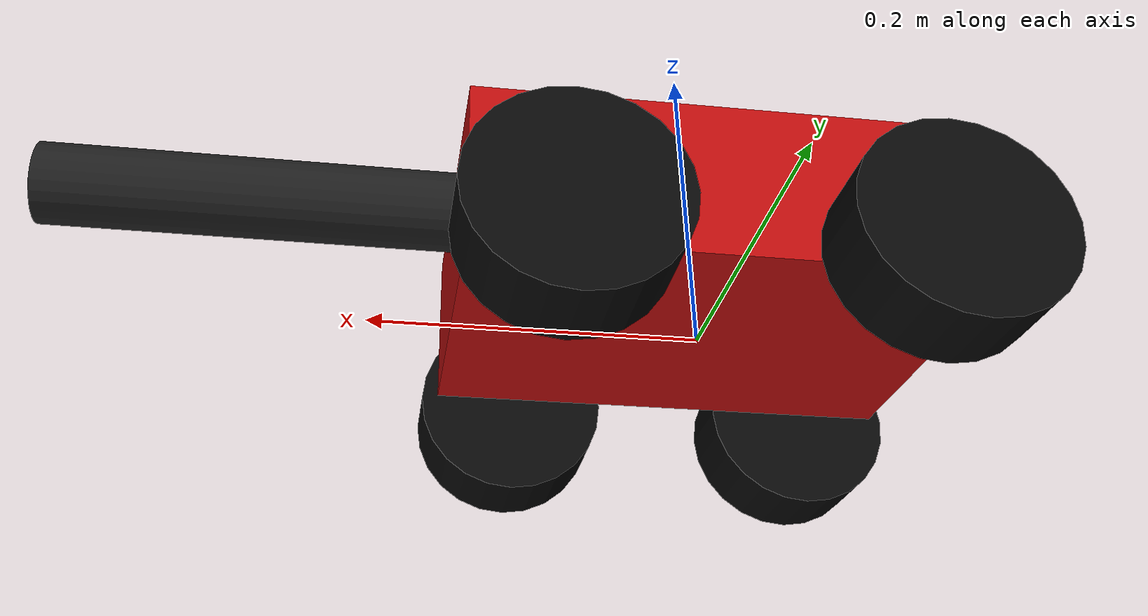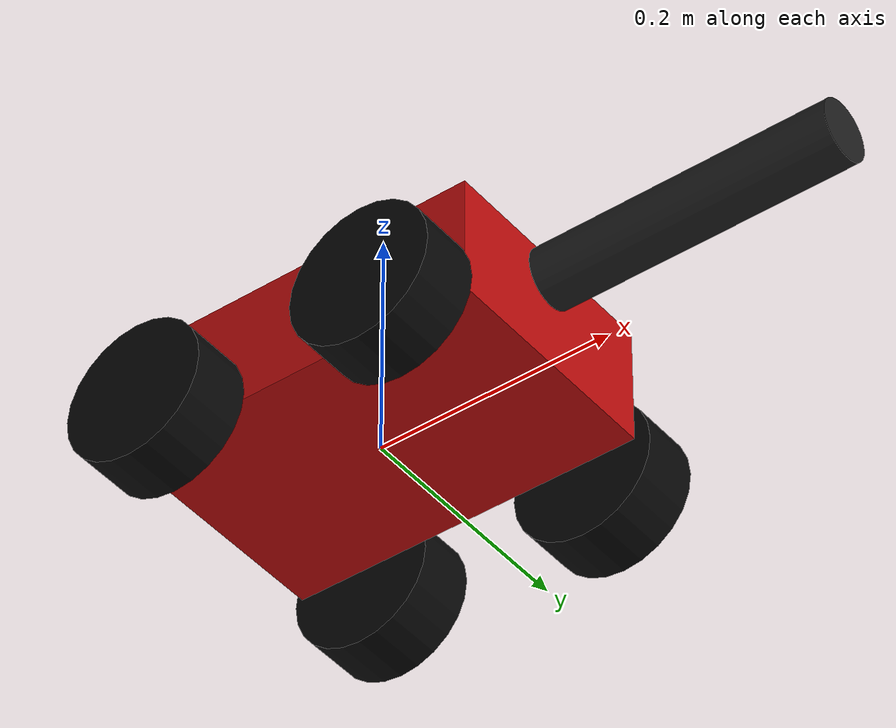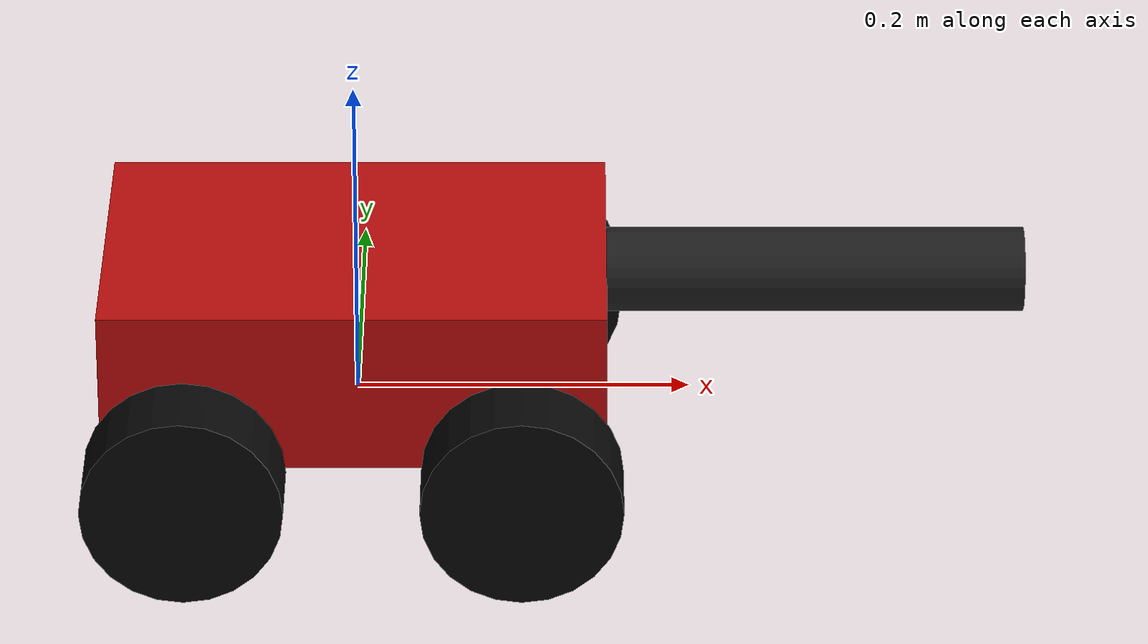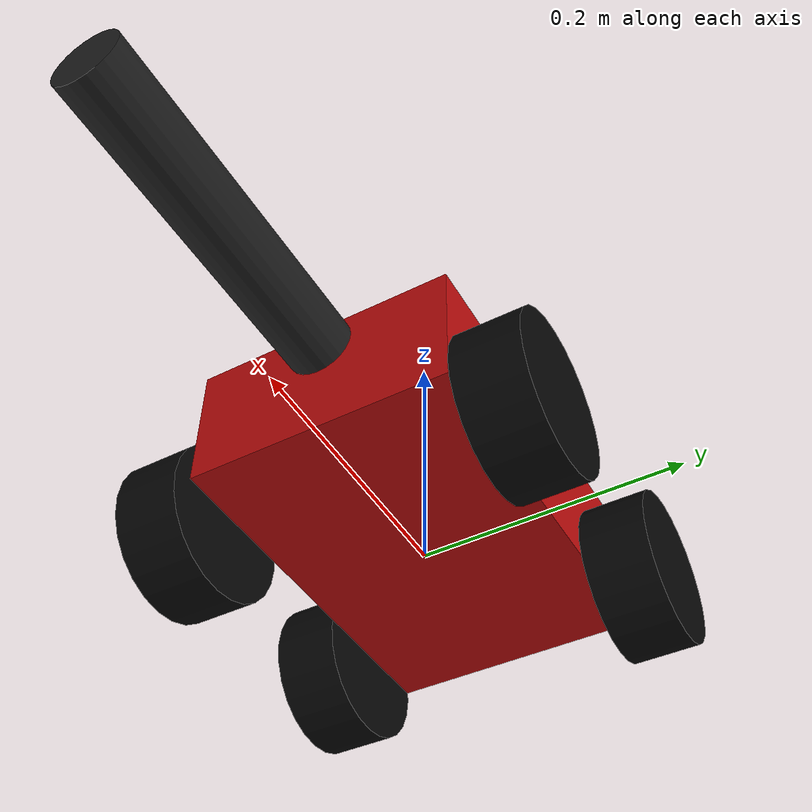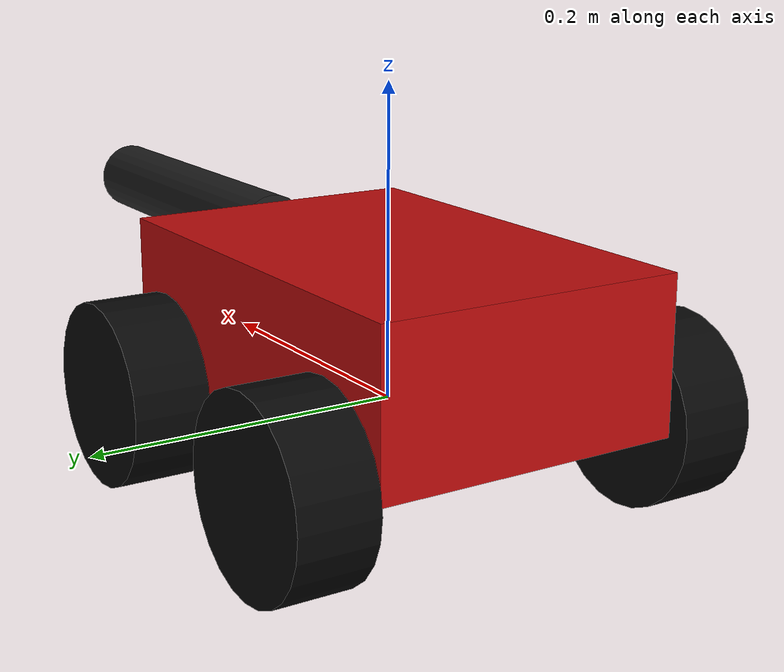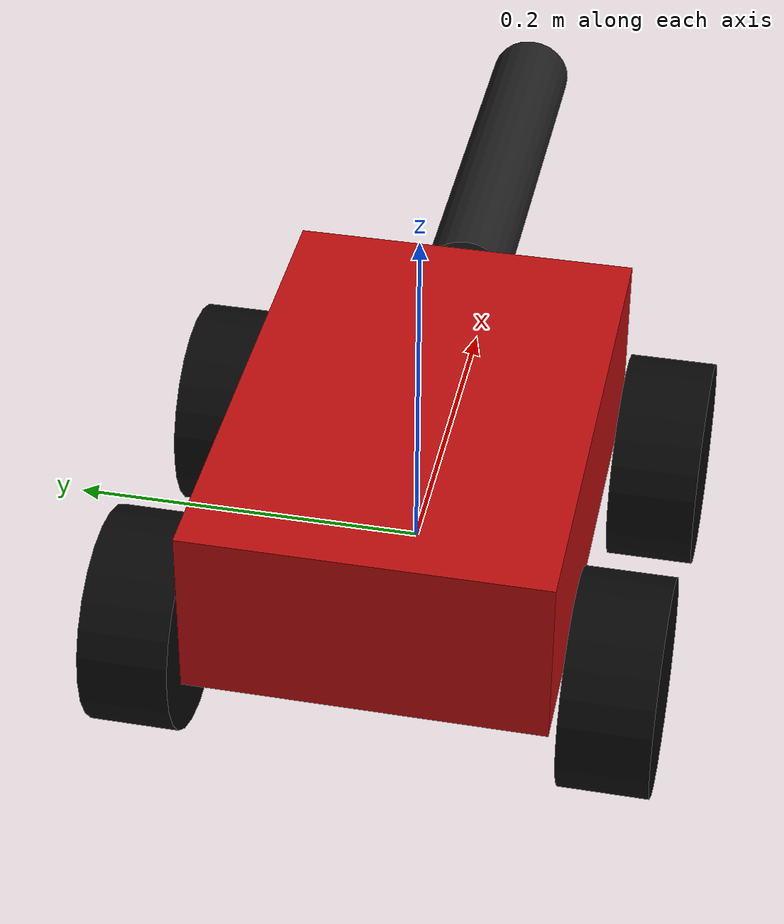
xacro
<?xml version="1.0"?>
<robot name="combat_shooter" xmlns:xacro="http://www.ros.org/wiki/xacro">
  <xacro:arg name="robot_id" default="red_robot"/>
  <xacro:arg name="opponent_id" default="blue_target"/>
  <xacro:arg name="body_rgba" default="0.75 0.05 0.05 1"/>
  <xacro:arg name="projectile_speed" default="12.0"/>
  <xacro:arg name="projectile_radius" default="0.02"/>

  <xacro:property name="PI" value="3.141592653589793"/>
  <xacro:property name="wheel_length" value="0.05"/>
  <xacro:property name="wheel_radius" value="0.06"/>

  <xacro:macro name="default_inertial" params="mass">
    <inertial>
      <mass value="${mass}"/>
      <inertia
        ixx="0.01" ixy="0.0" ixz="0.0"
        iyy="0.01" iyz="0.0" izz="0.01"/>
    </inertial>
  </xacro:macro>

  <xacro:macro name="wheel" params="name x y">
    <link name="${name}">
      <visual>
        <geometry>
          <cylinder length="${wheel_length}" radius="${wheel_radius}"/>
        </geometry>
        <material name="wheel_black">
          <color rgba="0.03 0.03 0.03 1"/>
        </material>
      </visual>
      <collision name="${name}_collision">
        <geometry>
          <cylinder length="${wheel_length}" radius="${wheel_radius}"/>
        </geometry>
      </collision>
      <xacro:default_inertial mass="0.5"/>
    </link>
    <joint name="base_to_${name}" type="continuous">
      <parent link="base_link"/>
      <child link="${name}"/>
      <origin xyz="${x} ${y} 0" rpy="${-PI / 2} 0 0"/>
      <axis xyz="0 0 1"/>
      <limit effort="100" velocity="100"/>
      <dynamics damping="0.05" friction="0.02"/>
    </joint>
    <gazebo reference="${name}">
      <material>Gazebo/Black</material>
      <mu1>0.5</mu1>
      <mu2>0.5</mu2>
    </gazebo>
  </xacro:macro>

  <!-- Match the original lightweight RMUL wheeled chassis. -->
  <link name="dummy"/>
  <link name="base_link">
    <visual>
      <origin xyz="0 0 0.05" rpy="0 0 ${PI / 2}"/>
      <geometry>
        <box size="0.20 0.30 0.10"/>
      </geometry>
      <material name="team_color">
        <color rgba="$(arg body_rgba)"/>
      </material>
    </visual>
    <collision name="chassis_collision">
      <origin xyz="0 0 0.05" rpy="0 0 ${PI / 2}"/>
      <geometry>
        <box size="0.20 0.30 0.10"/>
      </geometry>
    </collision>
    <xacro:default_inertial mass="8.2"/>
  </link>
  <joint name="dummy_joint" type="fixed">
    <parent link="dummy"/>
    <child link="base_link"/>
  </joint>

  <xacro:wheel name="wheel_1" x="0.10" y="0.13"/>
  <xacro:wheel name="wheel_2" x="-0.10" y="0.13"/>
  <xacro:wheel name="wheel_3" x="0.10" y="-0.13"/>
  <xacro:wheel name="wheel_4" x="-0.10" y="-0.13"/>

  <!-- Keep the existing logical gimbal/fire interface; only restore its car body. -->
  <link name="muzzle_link">
    <visual>
      <geometry>
        <cylinder radius="0.025" length="0.25"/>
      </geometry>
      <material name="gun_dark_grey">
        <color rgba="0.12 0.12 0.12 1"/>
      </material>
    </visual>
  </link>
  <joint name="muzzle_joint" type="fixed">
    <parent link="base_link"/>
    <child link="muzzle_link"/>
    <origin xyz="0.275 0 0.08" rpy="0 ${PI / 2} 0"/>
  </joint>
  <gazebo reference="muzzle_link">
    <material>Gazebo/DarkGrey</material>
  </gazebo>

  <gazebo>
    <plugin name="mecanum_controller" filename="libgazebo_ros_planar_move.so">
      <ros>
        <namespace>/$(arg robot_id)</namespace>
        <remapping>cmd_vel:=cmd_vel_chassis</remapping>
        <remapping>odom:=ground_truth_odom</remapping>
      </ros>
      <update_rate>100</update_rate>
      <publish_rate>20</publish_rate>
      <publish_odom>true</publish_odom>
      <publish_odom_tf>false</publish_odom_tf>
      <odometry_frame>world</odometry_frame>
      <robot_base_frame>$(arg robot_id)/base_link</robot_base_frame>
      <covariance_x>0.0001</covariance_x>
      <covariance_y>0.0001</covariance_y>
      <covariance_yaw>0.001</covariance_yaw>
    </plugin>
    <plugin name="logical_shooter" filename="liblogical_shooter_plugin.so">
      <robot_id>$(arg robot_id)</robot_id>
      <opponent_id>$(arg opponent_id)</opponent_id>
      <muzzle_x>0.40</muzzle_x>
      <muzzle_y>0.0</muzzle_y>
      <muzzle_z>0.08</muzzle_z>
      <projectile_speed>$(arg projectile_speed)</projectile_speed>
      <projectile_radius>$(arg projectile_radius)</projectile_radius>
    </plugin>
  </gazebo>
</robot>
